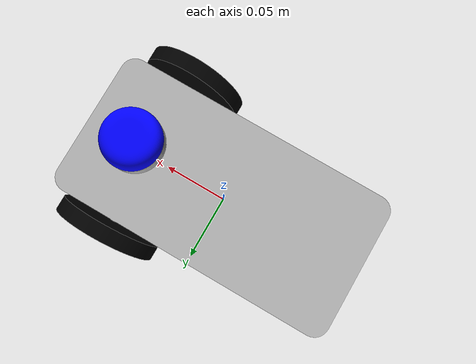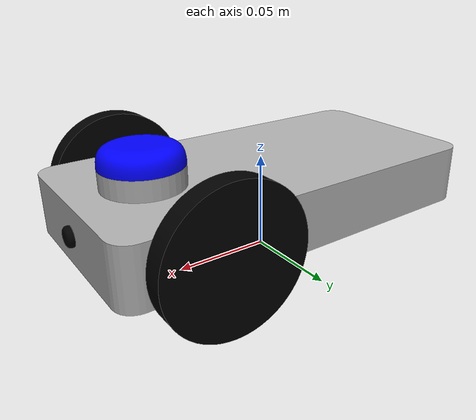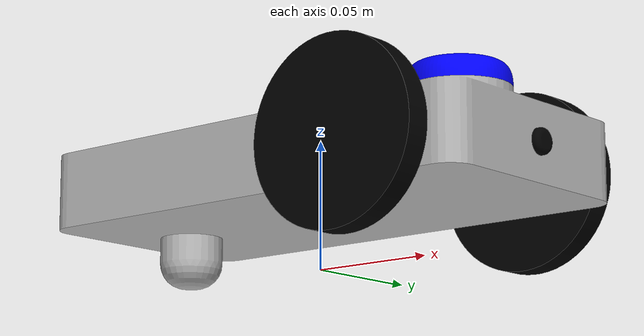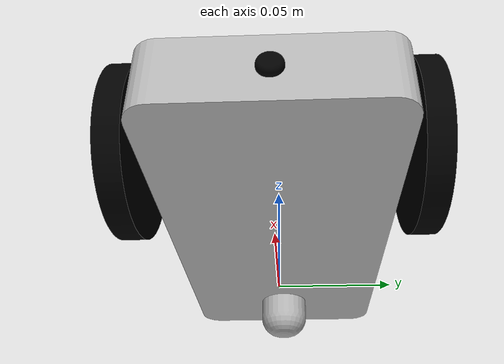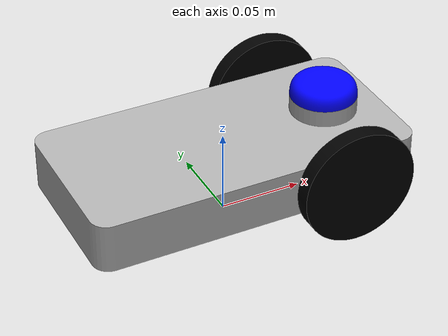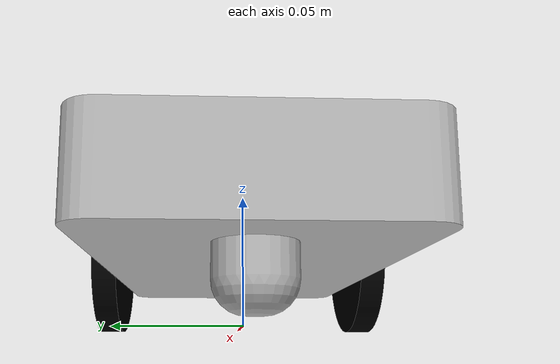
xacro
<?xml version="1.0" ?>
<robot name="urr_bot" xmlns:xacro="http://www.ros.org/wiki/xacro">

<xacro:include filename="$(find urr_bot_description)/urdf/materials.xacro" />
<xacro:include filename="$(find urr_bot_description)/urdf/urr_bot.trans" />
<xacro:include filename="$(find urr_bot_description)/urdf/urr_bot.gazebo" />
<link name="base_link">
  <inertial>
    <origin xyz="0.001469176771838543 0.0003790265380710722 0.03507288297524478" rpy="0 0 0"/>
    <mass value="0.6558055651572491"/>
    <inertia ixx="0.000584" iyy="0.002255" izz="0.002722" ixy="-0.0" iyz="0.0" ixz="-3.3e-05"/>
  </inertial>
  <visual>
    <origin xyz="0 0 0" rpy="0 0 0"/>
    <geometry>
      <mesh filename="package://urr_bot_description/meshes/base_link.stl" scale="0.001 0.001 0.001"/>
    </geometry>
    <material name="silver"/>
  </visual>
  <collision>
    <origin xyz="0 0 0" rpy="0 0 0"/>
    <geometry>
      <mesh filename="package://urr_bot_description/meshes/base_link.stl" scale="0.001 0.001 0.001"/>
    </geometry>
  </collision>
</link>

<link name="lidar_1">
  <inertial>
    <origin xyz="-3.4149261791960317e-07 2.653609604535284e-08 0.004584263465868918" rpy="0 0 0"/>
    <mass value="0.015296318351217206"/>
    <inertia ixx="2e-06" iyy="2e-06" izz="3e-06" ixy="-0.0" iyz="-0.0" ixz="0.0"/>
  </inertial>
  <visual>
    <origin xyz="-0.066117 -0.000379 -0.06" rpy="0 0 0"/>
    <geometry>
      <mesh filename="package://urr_bot_description/meshes/lidar_1.stl" scale="0.001 0.001 0.001"/>
    </geometry>
    <material name="blue"/>
  </visual>
  <collision>
    <origin xyz="-0.066117 -0.000379 -0.06" rpy="0 0 0"/>
    <geometry>
      <mesh filename="package://urr_bot_description/meshes/lidar_1.stl" scale="0.001 0.001 0.001"/>
    </geometry>
  </collision>
</link>

<link name="camera_1">
  <inertial>
    <origin xyz="0.0013792199193853605 2.653621699200831e-08 -1.3877787807814457e-16" rpy="0 0 0"/>
    <mass value="0.0003431856271826569"/>
    <inertia ixx="0.0" iyy="0.0" izz="0.0" ixy="-0.0" iyz="0.0" ixz="-0.0"/>
  </inertial>
  <visual>
    <origin xyz="-0.101117 -0.000379 -0.035" rpy="0 0 0"/>
    <geometry>
      <mesh filename="package://urr_bot_description/meshes/camera_1.stl" scale="0.001 0.001 0.001"/>
    </geometry>
    <material name="black"/>
  </visual>
  <collision>
    <origin xyz="-0.101117 -0.000379 -0.035" rpy="0 0 0"/>
    <geometry>
      <mesh filename="package://urr_bot_description/meshes/camera_1.stl" scale="0.001 0.001 0.001"/>
    </geometry>
  </collision>
</link>

<link name="right_wheel_1">
  <inertial>
    <origin xyz="-3.4101172063927265e-07 -0.004999972863944609 2.3592239273284576e-16" rpy="0 0 0"/>
    <mass value="0.03579059430602171"/>
    <inertia ixx="1.1e-05" iyy="2.2e-05" izz="1.1e-05" ixy="-0.0" iyz="-0.0" ixz="0.0"/>
  </inertial>
  <visual>
    <origin xyz="-0.056117 0.051621 -0.035" rpy="0 0 0"/>
    <geometry>
      <mesh filename="package://urr_bot_description/meshes/right_wheel_1.stl" scale="0.001 0.001 0.001"/>
    </geometry>
    <material name="black"/>
  </visual>
  <collision>
    <origin xyz="-0.056117 0.051621 -0.035" rpy="0 0 0"/>
    <geometry>
      <mesh filename="package://urr_bot_description/meshes/right_wheel_1.stl" scale="0.001 0.001 0.001"/>
    </geometry>
  </collision>
</link>

<link name="left_wheel_1">
  <inertial>
    <origin xyz="-3.410117210139729e-07 0.005000027136054359 -1.457167719820518e-16" rpy="0 0 0"/>
    <mass value="0.03579059430602171"/>
    <inertia ixx="1.1e-05" iyy="2.2e-05" izz="1.1e-05" ixy="0.0" iyz="-0.0" ixz="0.0"/>
  </inertial>
  <visual>
    <origin xyz="-0.056117 -0.052379 -0.035" rpy="0 0 0"/>
    <geometry>
      <mesh filename="package://urr_bot_description/meshes/left_wheel_1.stl" scale="0.001 0.001 0.001"/>
    </geometry>
    <material name="black"/>
  </visual>
  <collision>
    <origin xyz="-0.056117 -0.052379 -0.035" rpy="0 0 0"/>
    <geometry>
      <mesh filename="package://urr_bot_description/meshes/left_wheel_1.stl" scale="0.001 0.001 0.001"/>
    </geometry>
  </collision>
</link>

<joint name="lidar_joint" type="fixed">
  <origin xyz="0.066117 0.000379 0.06" rpy="0 0 0"/>
  <parent link="base_link"/>
  <child link="lidar_1"/>
</joint>

<joint name="cam_joint" type="fixed">
  <origin xyz="0.101117 0.000379 0.035" rpy="0 0 0"/>
  <parent link="base_link"/>
  <child link="camera_1"/>
</joint>

<joint name="right_motor" type="continuous">
  <origin xyz="0.056117 -0.051621 0.035" rpy="0 0 0"/>
  <parent link="base_link"/>
  <child link="right_wheel_1"/>
  <axis xyz="-0.0 1.0 0.0"/>
</joint>

<joint name="left_motor" type="continuous">
  <origin xyz="0.056117 0.052379 0.035" rpy="0 0 0"/>
  <parent link="base_link"/>
  <child link="left_wheel_1"/>
  <axis xyz="0.0 1.0 -0.0"/>
</joint>

</robot>

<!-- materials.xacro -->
<robot name="urr_bot" xmlns:xacro="http://www.ros.org/wiki/xacro" >

<material name="silver">
  <color rgba="0.700 0.700 0.700 1.000"/>
</material>

<material name="blue">
  <color rgba="0.0 0.0 1.0 1.000"/>
</material>

<material name="black">
  <color rgba="0.0 0.0 0.0 1.000"/>
</material>
</robot>

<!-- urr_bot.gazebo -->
<robot name="urr_bot" xmlns:xacro="http://www.ros.org/wiki/xacro" >

<xacro:property name="silver" value="Gazebo/Silver" />
<xacro:property name="blue" value="Gazebo/Blue" />
<xacro:property name="black" value="Gazebo/Black" />
<gazebo>
  <plugin name="control" filename="libgazebo_ros_control.so"/>
</gazebo>
<gazebo reference="base_link">
  <material>${silver}</material>
  <mu1>0.2</mu1>
  <mu2>0.2</mu2>
  <selfCollide>true</selfCollide>
  <gravity>true</gravity>
</gazebo>

<gazebo reference="lidar_1">
  <material>${blue}</material>
  <mu1>0.2</mu1>
  <mu2>0.2</mu2>
  <selfCollide>true</selfCollide>
</gazebo>

<gazebo reference="camera_1">
  <material>${black}</material>
  <mu1>0.2</mu1>
  <mu2>0.2</mu2>
  <selfCollide>true</selfCollide>
</gazebo>

<gazebo reference="right_wheel_1">
  <material>${black}</material>
  <mu1>1000</mu1>
  <mu2>1000</mu2>
  <selfCollide>true</selfCollide>
</gazebo>

<gazebo reference="left_wheel_1">
  <material>${black}</material>
  <mu1>1000</mu1>
  <mu2>1000</mu2>
  <selfCollide>true</selfCollide>
</gazebo>

<gazebo>
	<plugin name="differential_drive_controller" filename="libgazebo_ros_diff_drive.so">
		<updateRate>100</updateRate>
		<leftJoint>left_motor</leftJoint>
		<rightJoint>right_motor</rightJoint>
		<wheelSeparation>0.114</wheelSeparation>
		<wheelDiameter>0.06</wheelDiameter>
		<wheelAcceleration>1.0</wheelAcceleration>
		<wheelTorque>0.980665</wheelTorque>
		<commandTopic>cmd_vel</commandTopic>
		<odometryTopic>odom</odometryTopic>
		<odometryFrame>odom</odometryFrame>
		<robotBaseFrame>base_link</robotBaseFrame>
		<odometrySource>world</odometrySource>
		<publishWheelTF>0</publishWheelTF>
		<publishOdom>1</publishOdom>
		<publishWheelJointState>0</publishWheelJointState>
		<legacyMode>false</legacyMode>
		<publishTf>1</publishTf>
		<rosDebugLevel>na</rosDebugLevel>
		<publishOdomTF>1</publishOdomTF>
	</plugin>
</gazebo>
</robot>
